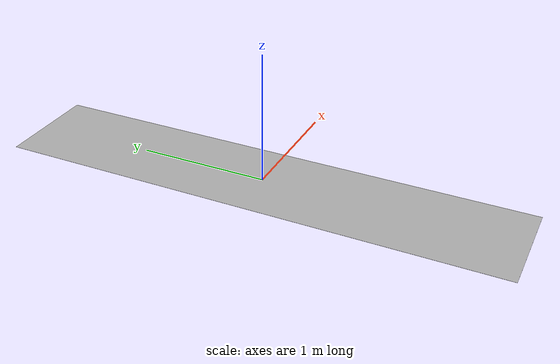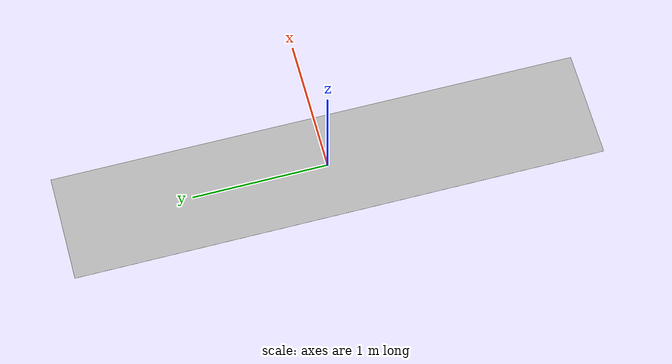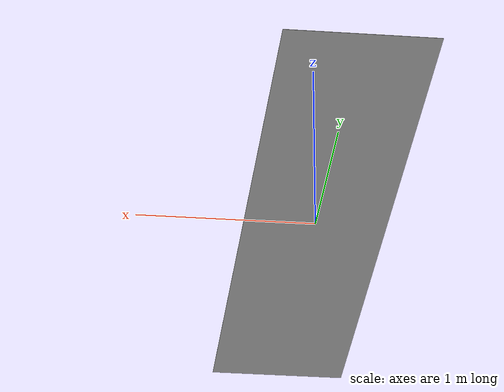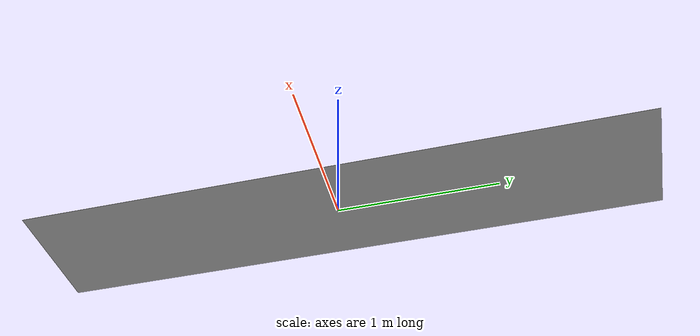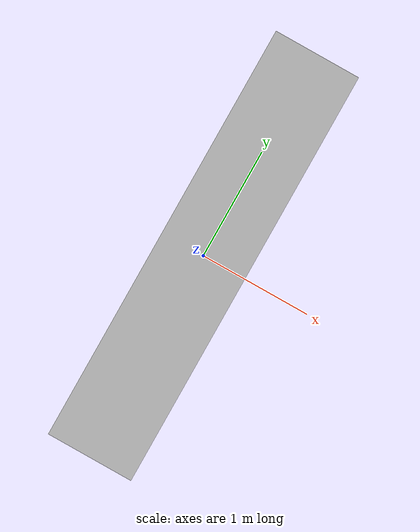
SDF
<?xml version="1.0" encoding="UTF-8"?>
<sdf version="1.4">
   <model name="smartcar_plane">
      <static>true</static>
      <link name="link">
         <collision name="collision">
            <geometry>
		<box>
			<size>0.8 3.9 0.001</size>
		</box>
            </geometry>
            <surface>
               <friction>
                  <ode>
                     <mu>100</mu>
                     <mu2>50</mu2>
                  </ode>
               </friction>
            </surface>
         </collision>
         <visual name="visual">
            <cast_shadows>true</cast_shadows>
            <geometry>
		<box>
			<size>0.8 3.9 0.001</size>
		</box>
            </geometry>
            <material>
               <script>
                  <uri>model://smartcar_plane/materials/scripts</uri>
                  <uri>model://smartcar_plane/materials/textures/</uri>
                  <name>SmartcarPlane/Image</name>
               </script>
            </material>
         </visual>
      </link>
   </model>
</sdf>
